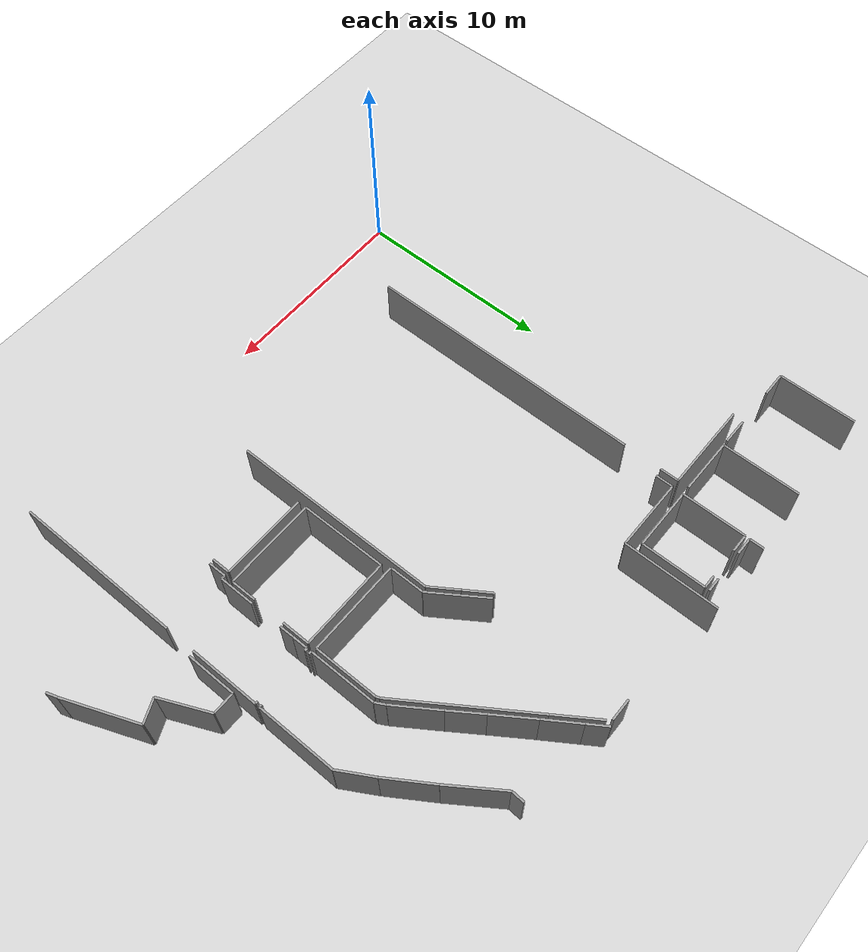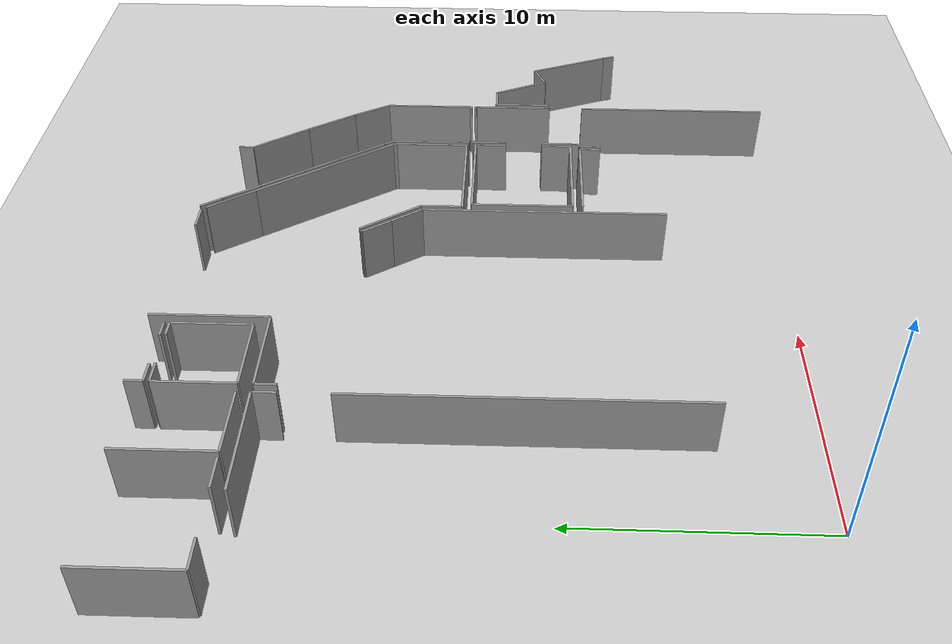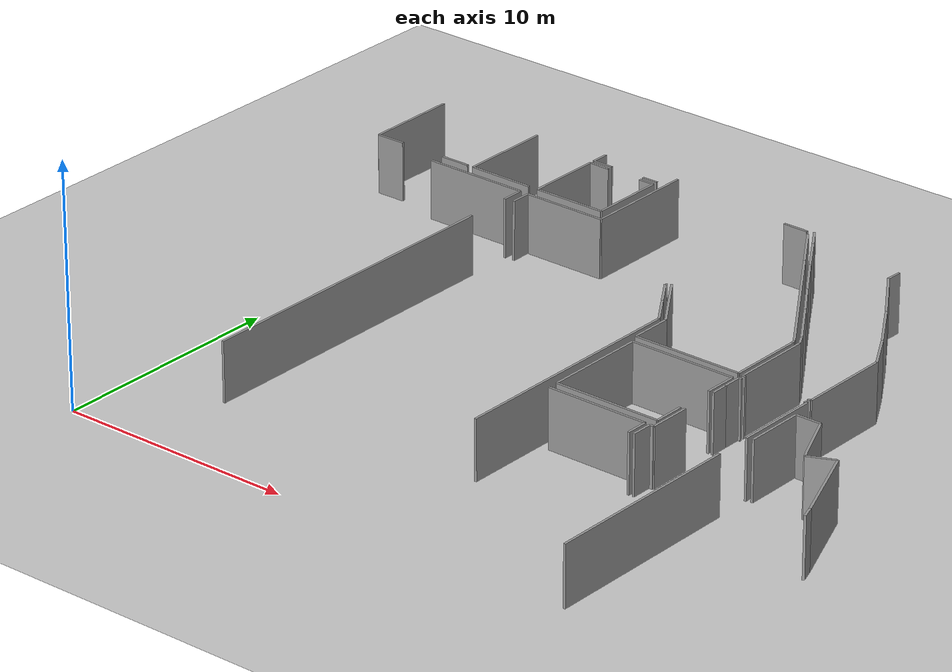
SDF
<sdf version="1.6">
 <world name="default">
  <model name="ground_plane">
   <static>1</static>
   <link name="link">
    <collision name="collision">
     <geometry><plane><normal>0 0 1</normal><size>100 100</size></plane></geometry>
     <surface><friction><ode><mu>100</mu><mu2>50</mu2></ode></friction></surface>
    </collision>
    <visual name="visual">
     <cast_shadows>0</cast_shadows>
     <geometry><plane><normal>0 0 1</normal><size>100 100</size></plane></geometry>
     <material>
      <script><uri>file://media/materials/scripts/gazebo.material</uri><name>Gazebo/Grey</name></script>
     </material>
    </visual>
   </link>
  </model>
  <model name="50041193">
   <static>1</static>
   <link name="Wall_91">
    <collision name="Wall_91_Collision">
     <geometry><box><size>4.47011577516 0.1 2.5</size></box></geometry>
     <pose>2.23505788758 0 1.25 0 0 0</pose>
    </collision>
    <visual name="Wall_91_Visual">
     <pose>2.23505788758 0 1.25 0 0 0</pose>
     <geometry><box><size>4.47011577516 0.1 2.5</size></box></geometry>
     <material>
      <script><uri>file://media/materials/scripts/gazebo.material</uri><name>Gazebo/Grey</name></script>
      <ambient>1 1 1 1</ambient>
     </material>
    </visual>
    <pose>30.9786877121 -32.1352319951 0 0 0 0.0</pose>
   </link>
   <link name="Wall_92">
    <collision name="Wall_92_Collision">
     <geometry><box><size>0.927345050644 0.1 2.5</size></box></geometry>
     <pose>0.463672525322 0 1.25 0 0 0</pose>
    </collision>
    <visual name="Wall_92_Visual">
     <pose>0.463672525322 0 1.25 0 0 0</pose>
     <geometry><box><size>0.927345050644 0.1 2.5</size></box></geometry>
     <material>
      <script><uri>file://media/materials/scripts/gazebo.material</uri><name>Gazebo/Grey</name></script>
      <ambient>1 1 1 1</ambient>
     </material>
    </visual>
    <pose>35.4488034872 -32.1352319951 0 0 0 -1.57079632679</pose>
   </link>
   <link name="Wall_93">
    <collision name="Wall_93_Collision">
     <geometry><box><size>14.011336053 0.1 2.5</size></box></geometry>
     <pose>7.00566802648 0 1.25 0 0 0</pose>
    </collision>
    <visual name="Wall_93_Visual">
     <pose>7.00566802648 0 1.25 0 0 0</pose>
     <geometry><box><size>14.011336053 0.1 2.5</size></box></geometry>
     <material>
      <script><uri>file://media/materials/scripts/gazebo.material</uri><name>Gazebo/Grey</name></script>
      <ambient>1 1 1 1</ambient>
     </material>
    </visual>
    <pose>35.4488034872 -35.0128356654 0 0 0 -1.57079632679</pose>
   </link>
   <link name="Wall_160">
    <collision name="Wall_160_Collision">
     <geometry><box><size>0.865581353972 0.1 2.5</size></box></geometry>
     <pose>0.432790676986 0 1.25 0 0 0</pose>
    </collision>
    <visual name="Wall_160_Visual">
     <pose>0.432790676986 0 1.25 0 0 0</pose>
     <geometry><box><size>0.865581353972 0.1 2.5</size></box></geometry>
     <material>
      <script><uri>file://media/materials/scripts/gazebo.material</uri><name>Gazebo/Grey</name></script>
      <ambient>1 1 1 1</ambient>
     </material>
    </visual>
    <pose>35.8492508292 -33.0225450201 0 0 0 1.57079632679</pose>
   </link>
   <link name="Wall_161">
    <collision name="Wall_161_Collision">
     <geometry><box><size>3.57759223252 0.1 2.5</size></box></geometry>
     <pose>1.78879611626 0 1.25 0 0 0</pose>
    </collision>
    <visual name="Wall_161_Visual">
     <pose>1.78879611626 0 1.25 0 0 0</pose>
     <geometry><box><size>3.57759223252 0.1 2.5</size></box></geometry>
     <material>
      <script><uri>file://media/materials/scripts/gazebo.material</uri><name>Gazebo/Grey</name></script>
      <ambient>1 1 1 1</ambient>
     </material>
    </visual>
    <pose>35.8492508292 -32.1569636662 0 0 0 0.0</pose>
   </link>
   <link name="Wall_162">
    <collision name="Wall_162_Collision">
     <geometry><box><size>4.72797285447 0.1 2.5</size></box></geometry>
     <pose>2.36398642724 0 1.25 0 0 0</pose>
    </collision>
    <visual name="Wall_162_Visual">
     <pose>2.36398642724 0 1.25 0 0 0</pose>
     <geometry><box><size>4.72797285447 0.1 2.5</size></box></geometry>
     <material>
      <script><uri>file://media/materials/scripts/gazebo.material</uri><name>Gazebo/Grey</name></script>
      <ambient>1 1 1 1</ambient>
     </material>
    </visual>
    <pose>39.4268430618 -32.1569636662 0 0 0 1.57079632679</pose>
   </link>
   <link name="Wall_165">
    <collision name="Wall_165_Collision">
     <geometry><box><size>0.691855071359 0.1 2.5</size></box></geometry>
     <pose>0.345927535679 0 1.25 0 0 0</pose>
    </collision>
    <visual name="Wall_165_Visual">
     <pose>0.345927535679 0 1.25 0 0 0</pose>
     <geometry><box><size>0.691855071359 0.1 2.5</size></box></geometry>
     <material>
      <script><uri>file://media/materials/scripts/gazebo.material</uri><name>Gazebo/Grey</name></script>
      <ambient>1 1 1 1</ambient>
     </material>
    </visual>
    <pose>38.9859824367 -28.1592257933 0 0 0 3.14159265359</pose>
   </link>
   <link name="Wall_166">
    <collision name="Wall_166_Collision">
     <geometry><box><size>0.888710968775 0.1 2.5</size></box></geometry>
     <pose>0.444355484388 0 1.25 0 0 0</pose>
    </collision>
    <visual name="Wall_166_Visual">
     <pose>0.444355484388 0 1.25 0 0 0</pose>
     <geometry><box><size>0.888710968775 0.1 2.5</size></box></geometry>
     <material>
      <script><uri>file://media/materials/scripts/gazebo.material</uri><name>Gazebo/Grey</name></script>
      <ambient>1 1 1 1</ambient>
     </material>
    </visual>
    <pose>36.7632518713 -28.1592257933 0 0 0 3.14159265359</pose>
   </link>
   <link name="Wall_167">
    <collision name="Wall_167_Collision">
     <geometry><box><size>0.726803665154 0.1 2.5</size></box></geometry>
     <pose>0.363401832577 0 1.25 0 0 0</pose>
    </collision>
    <visual name="Wall_167_Visual">
     <pose>0.363401832577 0 1.25 0 0 0</pose>
     <geometry><box><size>0.726803665154 0.1 2.5</size></box></geometry>
     <material>
      <script><uri>file://media/materials/scripts/gazebo.material</uri><name>Gazebo/Grey</name></script>
      <ambient>1 1 1 1</ambient>
     </material>
    </visual>
    <pose>35.8745409026 -28.1592257933 0 0 0 1.57079632679</pose>
   </link>
   <link name="Wall_178">
    <collision name="Wall_178_Collision">
     <geometry><box><size>0.642270563866 0.1 2.5</size></box></geometry>
     <pose>0.321135281933 0 1.25 0 0 0</pose>
    </collision>
    <visual name="Wall_178_Visual">
     <pose>0.321135281933 0 1.25 0 0 0</pose>
     <geometry><box><size>0.642270563866 0.1 2.5</size></box></geometry>
     <material>
      <script><uri>file://media/materials/scripts/gazebo.material</uri><name>Gazebo/Grey</name></script>
      <ambient>1 1 1 1</ambient>
     </material>
    </visual>
    <pose>50.8868046818 -28.7494122282 0 0 0 -1.61453944895</pose>
   </link>
   <link name="Wall_179">
    <collision name="Wall_179_Collision">
     <geometry><box><size>2.78820247608 0.1 2.5</size></box></geometry>
     <pose>1.39410123804 0 1.25 0 0 0</pose>
    </collision>
    <visual name="Wall_179_Visual">
     <pose>1.39410123804 0 1.25 0 0 0</pose>
     <geometry><box><size>2.78820247608 0.1 2.5</size></box></geometry>
     <material>
      <script><uri>file://media/materials/scripts/gazebo.material</uri><name>Gazebo/Grey</name></script>
      <ambient>1 1 1 1</ambient>
     </material>
    </visual>
    <pose>50.858718721 -29.3910684103 0 0 0 -0.972617083423</pose>
   </link>
   <link name="Wall_180">
    <collision name="Wall_180_Collision">
     <geometry><box><size>2.3991528332 0.1 2.5</size></box></geometry>
     <pose>1.1995764166 0 1.25 0 0 0</pose>
    </collision>
    <visual name="Wall_180_Visual">
     <pose>1.1995764166 0 1.25 0 0 0</pose>
     <geometry><box><size>2.3991528332 0.1 2.5</size></box></geometry>
     <material>
      <script><uri>file://media/materials/scripts/gazebo.material</uri><name>Gazebo/Grey</name></script>
      <ambient>1 1 1 1</ambient>
     </material>
    </visual>
    <pose>52.4288637259 -31.6951338849 0 0 0 -1.00024816302</pose>
   </link>
   <link name="Wall_181">
    <collision name="Wall_181_Collision">
     <geometry><box><size>1.79544605039 0.1 2.5</size></box></geometry>
     <pose>0.897723025195 0 1.25 0 0 0</pose>
    </collision>
    <visual name="Wall_181_Visual">
     <pose>0.897723025195 0 1.25 0 0 0</pose>
     <geometry><box><size>1.79544605039 0.1 2.5</size></box></geometry>
     <material>
      <script><uri>file://media/materials/scripts/gazebo.material</uri><name>Gazebo/Grey</name></script>
      <ambient>1 1 1 1</ambient>
     </material>
    </visual>
    <pose>53.724630498 -33.7142730057 0 0 0 -1.04988553948</pose>
   </link>
   <link name="Wall_182">
    <collision name="Wall_182_Collision">
     <geometry><box><size>3.93775337731 0.1 2.5</size></box></geometry>
     <pose>1.96887668865 0 1.25 0 0 0</pose>
    </collision>
    <visual name="Wall_182_Visual">
     <pose>1.96887668865 0 1.25 0 0 0</pose>
     <geometry><box><size>3.93775337731 0.1 2.5</size></box></geometry>
     <material>
      <script><uri>file://media/materials/scripts/gazebo.material</uri><name>Gazebo/Grey</name></script>
      <ambient>1 1 1 1</ambient>
     </material>
    </visual>
    <pose>54.6181707271 -35.2715823452 0 0 0 -1.57079632679</pose>
   </link>
   <link name="Wall_183">
    <collision name="Wall_183_Collision">
     <geometry><box><size>0.138904774613 0.1 2.5</size></box></geometry>
     <pose>0.0694523873067 0 1.25 0 0 0</pose>
    </collision>
    <visual name="Wall_183_Visual">
     <pose>0.0694523873067 0 1.25 0 0 0</pose>
     <geometry><box><size>0.138904774613 0.1 2.5</size></box></geometry>
     <material>
      <script><uri>file://media/materials/scripts/gazebo.material</uri><name>Gazebo/Grey</name></script>
      <ambient>1 1 1 1</ambient>
     </material>
    </visual>
    <pose>54.6181707271 -39.2093357225 0 0 0 3.14159265359</pose>
   </link>
   <link name="Wall_184">
    <collision name="Wall_184_Collision">
     <geometry><box><size>0.138523517226 0.1 2.5</size></box></geometry>
     <pose>0.0692617586132 0 1.25 0 0 0</pose>
    </collision>
    <visual name="Wall_184_Visual">
     <pose>0.0692617586132 0 1.25 0 0 0</pose>
     <geometry><box><size>0.138523517226 0.1 2.5</size></box></geometry>
     <material>
      <script><uri>file://media/materials/scripts/gazebo.material</uri><name>Gazebo/Grey</name></script>
      <ambient>1 1 1 1</ambient>
     </material>
    </visual>
    <pose>51.711845667 -39.2093357225 0 0 0 3.14159265359</pose>
   </link>
   <link name="Wall_185">
    <collision name="Wall_185_Collision">
     <geometry><box><size>3.38569268113 0.1 2.5</size></box></geometry>
     <pose>1.69284634056 0 1.25 0 0 0</pose>
    </collision>
    <visual name="Wall_185_Visual">
     <pose>1.69284634056 0 1.25 0 0 0</pose>
     <geometry><box><size>3.38569268113 0.1 2.5</size></box></geometry>
     <material>
      <script><uri>file://media/materials/scripts/gazebo.material</uri><name>Gazebo/Grey</name></script>
      <ambient>1 1 1 1</ambient>
     </material>
    </visual>
    <pose>51.5733221498 -39.2093357225 0 0 0 1.57079632679</pose>
   </link>
   <link name="Wall_186">
    <collision name="Wall_186_Collision">
     <geometry><box><size>0.516600804796 0.1 2.5</size></box></geometry>
     <pose>0.258300402398 0 1.25 0 0 0</pose>
    </collision>
    <visual name="Wall_186_Visual">
     <pose>0.258300402398 0 1.25 0 0 0</pose>
     <geometry><box><size>0.516600804796 0.1 2.5</size></box></geometry>
     <material>
      <script><uri>file://media/materials/scripts/gazebo.material</uri><name>Gazebo/Grey</name></script>
      <ambient>1 1 1 1</ambient>
     </material>
    </visual>
    <pose>51.5733221498 -35.8236430414 0 0 0 2.06943625156</pose>
   </link>
   <link name="Wall_187">
    <collision name="Wall_187_Collision">
     <geometry><box><size>2.33858599073 0.1 2.5</size></box></geometry>
     <pose>1.16929299537 0 1.25 0 0 0</pose>
    </collision>
    <visual name="Wall_187_Visual">
     <pose>1.16929299537 0 1.25 0 0 0</pose>
     <geometry><box><size>2.33858599073 0.1 2.5</size></box></geometry>
     <material>
      <script><uri>file://media/materials/scripts/gazebo.material</uri><name>Gazebo/Grey</name></script>
      <ambient>1 1 1 1</ambient>
     </material>
    </visual>
    <pose>51.3262673631 -35.3699467511 0 0 0 2.15968818073</pose>
   </link>
   <link name="Wall_188">
    <collision name="Wall_188_Collision">
     <geometry><box><size>1.70840346458 0.1 2.5</size></box></geometry>
     <pose>0.854201732291 0 1.25 0 0 0</pose>
    </collision>
    <visual name="Wall_188_Visual">
     <pose>0.854201732291 0 1.25 0 0 0</pose>
     <geometry><box><size>1.70840346458 0.1 2.5</size></box></geometry>
     <material>
      <script><uri>file://media/materials/scripts/gazebo.material</uri><name>Gazebo/Grey</name></script>
      <ambient>1 1 1 1</ambient>
     </material>
    </visual>
    <pose>50.0273234461 -33.4252799065 0 0 0 2.16814522389</pose>
   </link>
   <link name="Wall_189">
    <collision name="Wall_189_Collision">
     <geometry><box><size>2.08422069436 0.1 2.5</size></box></geometry>
     <pose>1.04211034718 0 1.25 0 0 0</pose>
    </collision>
    <visual name="Wall_189_Visual">
     <pose>1.04211034718 0 1.25 0 0 0</pose>
     <geometry><box><size>2.08422069436 0.1 2.5</size></box></geometry>
     <material>
      <script><uri>file://media/materials/scripts/gazebo.material</uri><name>Gazebo/Grey</name></script>
      <ambient>1 1 1 1</ambient>
     </material>
    </visual>
    <pose>49.0664277454 -32.0127212881 0 0 0 2.16260402266</pose>
   </link>
   <link name="Wall_190">
    <collision name="Wall_190_Collision">
     <geometry><box><size>1.80439079095 0.1 2.5</size></box></geometry>
     <pose>0.902195395474 0 1.25 0 0 0</pose>
    </collision>
    <visual name="Wall_190_Visual">
     <pose>0.902195395474 0 1.25 0 0 0</pose>
     <geometry><box><size>1.80439079095 0.1 2.5</size></box></geometry>
     <material>
      <script><uri>file://media/materials/scripts/gazebo.material</uri><name>Gazebo/Grey</name></script>
      <ambient>1 1 1 1</ambient>
     </material>
    </visual>
    <pose>47.9037198012 -30.2829565239 0 0 0 2.15147355494</pose>
   </link>
   <link name="Wall_191">
    <collision name="Wall_191_Collision">
     <geometry><box><size>1.01273857203 0.1 2.5</size></box></geometry>
     <pose>0.506369286016 0 1.25 0 0 0</pose>
    </collision>
    <visual name="Wall_191_Visual">
     <pose>0.506369286016 0 1.25 0 0 0</pose>
     <geometry><box><size>1.01273857203 0.1 2.5</size></box></geometry>
     <material>
      <script><uri>file://media/materials/scripts/gazebo.material</uri><name>Gazebo/Grey</name></script>
      <ambient>1 1 1 1</ambient>
     </material>
    </visual>
    <pose>46.9138485391 -28.7743210441 0 0 0 2.15347390759</pose>
   </link>
   <link name="Wall_197">
    <collision name="Wall_197_Collision">
     <geometry><box><size>0.0807289947508 0.1 2.5</size></box></geometry>
     <pose>0.0403644973754 0 1.25 0 0 0</pose>
    </collision>
    <visual name="Wall_197_Visual">
     <pose>0.0403644973754 0 1.25 0 0 0</pose>
     <geometry><box><size>0.0807289947508 0.1 2.5</size></box></geometry>
     <material>
      <script><uri>file://media/materials/scripts/gazebo.material</uri><name>Gazebo/Grey</name></script>
      <ambient>1 1 1 1</ambient>
     </material>
    </visual>
    <pose>44.8732319189 -35.0114377216 0 0 0 -2.50816677062</pose>
   </link>
   <link name="Wall_198">
    <collision name="Wall_198_Collision">
     <geometry><box><size>1.38310541928 0.1 2.5</size></box></geometry>
     <pose>0.69155270964 0 1.25 0 0 0</pose>
    </collision>
    <visual name="Wall_198_Visual">
     <pose>0.69155270964 0 1.25 0 0 0</pose>
     <geometry><box><size>1.38310541928 0.1 2.5</size></box></geometry>
     <material>
      <script><uri>file://media/materials/scripts/gazebo.material</uri><name>Gazebo/Grey</name></script>
      <ambient>1 1 1 1</ambient>
     </material>
    </visual>
    <pose>44.8081639915 -35.0592219808 0 0 0 -0.984883424589</pose>
   </link>
   <link name="Wall_199">
    <collision name="Wall_199_Collision">
     <geometry><box><size>1.5091121074 0.1 2.5</size></box></geometry>
     <pose>0.754556053699 0 1.25 0 0 0</pose>
    </collision>
    <visual name="Wall_199_Visual">
     <pose>0.754556053699 0 1.25 0 0 0</pose>
     <geometry><box><size>1.5091121074 0.1 2.5</size></box></geometry>
     <material>
      <script><uri>file://media/materials/scripts/gazebo.material</uri><name>Gazebo/Grey</name></script>
      <ambient>1 1 1 1</ambient>
     </material>
    </visual>
    <pose>45.5729663096 -36.2116359754 0 0 0 -0.983798043825</pose>
   </link>
   <link name="Wall_200">
    <collision name="Wall_200_Collision">
     <geometry><box><size>10.4121392352 0.1 2.5</size></box></geometry>
     <pose>5.2060696176 0 1.25 0 0 0</pose>
    </collision>
    <visual name="Wall_200_Visual">
     <pose>5.2060696176 0 1.25 0 0 0</pose>
     <geometry><box><size>10.4121392352 0.1 2.5</size></box></geometry>
     <material>
      <script><uri>file://media/materials/scripts/gazebo.material</uri><name>Gazebo/Grey</name></script>
      <ambient>1 1 1 1</ambient>
     </material>
    </visual>
    <pose>46.4088095874 -37.4681332367 0 0 0 -1.57079632679</pose>
   </link>
   <link name="Wall_239">
    <collision name="Wall_239_Collision">
     <geometry><box><size>3.9232655966 0.1 2.5</size></box></geometry>
     <pose>1.9616327983 0 1.25 0 0 0</pose>
    </collision>
    <visual name="Wall_239_Visual">
     <pose>1.9616327983 0 1.25 0 0 0</pose>
     <geometry><box><size>3.9232655966 0.1 2.5</size></box></geometry>
     <material>
      <script><uri>file://media/materials/scripts/gazebo.material</uri><name>Gazebo/Grey</name></script>
      <ambient>1 1 1 1</ambient>
     </material>
    </visual>
    <pose>27.8256891227 -31.5976590796 0 0 0 1.57079632679</pose>
   </link>
   <link name="Wall_247">
    <collision name="Wall_247_Collision">
     <geometry><box><size>1.29868974545 0.1 2.5</size></box></geometry>
     <pose>0.649344872724 0 1.25 0 0 0</pose>
    </collision>
    <visual name="Wall_247_Visual">
     <pose>0.649344872724 0 1.25 0 0 0</pose>
     <geometry><box><size>1.29868974545 0.1 2.5</size></box></geometry>
     <material>
      <script><uri>file://media/materials/scripts/gazebo.material</uri><name>Gazebo/Grey</name></script>
      <ambient>1 1 1 1</ambient>
     </material>
    </visual>
    <pose>32.3720563753 -31.586856787 0 0 0 3.14159265359</pose>
   </link>
   <link name="Wall_248">
    <collision name="Wall_248_Collision">
     <geometry><box><size>1.24332726575 0.1 2.5</size></box></geometry>
     <pose>0.621663632877 0 1.25 0 0 0</pose>
    </collision>
    <visual name="Wall_248_Visual">
     <pose>0.621663632877 0 1.25 0 0 0</pose>
     <geometry><box><size>1.24332726575 0.1 2.5</size></box></geometry>
     <material>
      <script><uri>file://media/materials/scripts/gazebo.material</uri><name>Gazebo/Grey</name></script>
      <ambient>1 1 1 1</ambient>
     </material>
    </visual>
    <pose>29.0689694613 -31.586856787 0 0 0 -3.13290433087</pose>
   </link>
   <link name="Wall_249">
    <collision name="Wall_249_Collision">
     <geometry><box><size>3.9117007892 0.1 2.5</size></box></geometry>
     <pose>1.9558503946 0 1.25 0 0 0</pose>
    </collision>
    <visual name="Wall_249_Visual">
     <pose>1.9558503946 0 1.25 0 0 0</pose>
     <geometry><box><size>3.9117007892 0.1 2.5</size></box></geometry>
     <material>
      <script><uri>file://media/materials/scripts/gazebo.material</uri><name>Gazebo/Grey</name></script>
      <ambient>1 1 1 1</ambient>
     </material>
    </visual>
    <pose>32.6342343716 -31.5860942722 0 0 0 1.57079632679</pose>
   </link>
   <link name="Wall_253">
    <collision name="Wall_253_Collision">
     <geometry><box><size>2.80607819867 0.1 2.5</size></box></geometry>
     <pose>1.40303909933 0 1.25 0 0 0</pose>
    </collision>
    <visual name="Wall_253_Visual">
     <pose>1.40303909933 0 1.25 0 0 0</pose>
     <geometry><box><size>2.80607819867 0.1 2.5</size></box></geometry>
     <material>
      <script><uri>file://media/materials/scripts/gazebo.material</uri><name>Gazebo/Grey</name></script>
      <ambient>1 1 1 1</ambient>
     </material>
    </visual>
    <pose>35.4402887389 -31.5976590796 0 0 0 3.13747130011</pose>
   </link>
   <link name="Wall_254">
    <collision name="Wall_254_Collision">
     <geometry><box><size>3.20726422408 0.1 2.5</size></box></geometry>
     <pose>1.60363211204 0 1.25 0 0 0</pose>
    </collision>
    <visual name="Wall_254_Visual">
     <pose>1.60363211204 0 1.25 0 0 0</pose>
     <geometry><box><size>3.20726422408 0.1 2.5</size></box></geometry>
     <material>
      <script><uri>file://media/materials/scripts/gazebo.material</uri><name>Gazebo/Grey</name></script>
      <ambient>1 1 1 1</ambient>
     </material>
    </visual>
    <pose>35.8608156366 -31.5872380444 0 0 0 1.57079632679</pose>
   </link>
   <link name="Wall_255">
    <collision name="Wall_255_Collision">
     <geometry><box><size>0.923532476775 0.1 2.5</size></box></geometry>
     <pose>0.461766238388 0 1.25 0 0 0</pose>
    </collision>
    <visual name="Wall_255_Visual">
     <pose>0.461766238388 0 1.25 0 0 0</pose>
     <geometry><box><size>0.923532476775 0.1 2.5</size></box></geometry>
     <material>
      <script><uri>file://media/materials/scripts/gazebo.material</uri><name>Gazebo/Grey</name></script>
      <ambient>1 1 1 1</ambient>
     </material>
    </visual>
    <pose>35.8608156366 -28.3799738203 0 0 0 0.0</pose>
   </link>
   <link name="Wall_256">
    <collision name="Wall_256_Collision">
     <geometry><box><size>0.656398134381 0.1 2.5</size></box></geometry>
     <pose>0.32819906719 0 1.25 0 0 0</pose>
    </collision>
    <visual name="Wall_256_Visual">
     <pose>0.32819906719 0 1.25 0 0 0</pose>
     <geometry><box><size>0.656398134381 0.1 2.5</size></box></geometry>
     <material>
      <script><uri>file://media/materials/scripts/gazebo.material</uri><name>Gazebo/Grey</name></script>
      <ambient>1 1 1 1</ambient>
     </material>
    </visual>
    <pose>38.3192903529 -28.3799738203 0 0 0 0.0</pose>
   </link>
   <link name="Wall_257">
    <collision name="Wall_257_Collision">
     <geometry><box><size>3.20446833657 0.1 2.5</size></box></geometry>
     <pose>1.60223416829 0 1.25 0 0 0</pose>
    </collision>
    <visual name="Wall_257_Visual">
     <pose>1.60223416829 0 1.25 0 0 0</pose>
     <geometry><box><size>3.20446833657 0.1 2.5</size></box></geometry>
     <material>
      <script><uri>file://media/materials/scripts/gazebo.material</uri><name>Gazebo/Grey</name></script>
      <ambient>1 1 1 1</ambient>
     </material>
    </visual>
    <pose>38.9756884873 -28.3799738203 0 0 0 -1.57079632679</pose>
   </link>
   <link name="Wall_258">
    <collision name="Wall_258_Collision">
     <geometry><box><size>3.11487410545 0.1 2.5</size></box></geometry>
     <pose>1.55743705272 0 1.25 0 0 0</pose>
    </collision>
    <visual name="Wall_258_Visual">
     <pose>1.55743705272 0 1.25 0 0 0</pose>
     <geometry><box><size>3.11487410545 0.1 2.5</size></box></geometry>
     <material>
      <script><uri>file://media/materials/scripts/gazebo.material</uri><name>Gazebo/Grey</name></script>
      <ambient>1 1 1 1</ambient>
     </material>
    </visual>
    <pose>38.9756884873 -31.5844421569 0 0 0 -3.14069506101</pose>
   </link>
   <link name="Wall_259">
    <collision name="Wall_259_Collision">
     <geometry><box><size>1.74768386137 0.1 2.5</size></box></geometry>
     <pose>0.873841930687 0 1.25 0 0 0</pose>
    </collision>
    <visual name="Wall_259_Visual">
     <pose>0.873841930687 0 1.25 0 0 0</pose>
     <geometry><box><size>1.74768386137 0.1 2.5</size></box></geometry>
     <material>
      <script><uri>file://media/materials/scripts/gazebo.material</uri><name>Gazebo/Grey</name></script>
      <ambient>1 1 1 1</ambient>
     </material>
    </visual>
    <pose>46.6666666667 -39.1488428838 0 0 0 1.57079632679</pose>
   </link>
   <link name="Wall_260">
    <collision name="Wall_260_Collision">
     <geometry><box><size>2.96959729612 0.1 2.5</size></box></geometry>
     <pose>1.48479864806 0 1.25 0 0 0</pose>
    </collision>
    <visual name="Wall_260_Visual">
     <pose>1.48479864806 0 1.25 0 0 0</pose>
     <geometry><box><size>2.96959729612 0.1 2.5</size></box></geometry>
     <material>
      <script><uri>file://media/materials/scripts/gazebo.material</uri><name>Gazebo/Grey</name></script>
      <ambient>1 1 1 1</ambient>
     </material>
    </visual>
    <pose>46.6666666667 -37.4011590225 0 0 0 2.16206301371</pose>
   </link>
   <link name="Wall_261">
    <collision name="Wall_261_Collision">
     <geometry><box><size>1.07679794629 0.1 2.5</size></box></geometry>
     <pose>0.538398973147 0 1.25 0 0 0</pose>
    </collision>
    <visual name="Wall_261_Visual">
     <pose>0.538398973147 0 1.25 0 0 0</pose>
     <geometry><box><size>1.07679794629 0.1 2.5</size></box></geometry>
     <material>
      <script><uri>file://media/materials/scripts/gazebo.material</uri><name>Gazebo/Grey</name></script>
      <ambient>1 1 1 1</ambient>
     </material>
    </visual>
    <pose>45.0113741787 -28.0273107375 0 0 0 0.0</pose>
   </link>
   <link name="Wall_263">
    <collision name="Wall_263_Collision">
     <geometry><box><size>2.29170621338 0.1 2.5</size></box></geometry>
     <pose>1.14585310669 0 1.25 0 0 0</pose>
    </collision>
    <visual name="Wall_263_Visual">
     <pose>1.14585310669 0 1.25 0 0 0</pose>
     <geometry><box><size>2.29170621338 0.1 2.5</size></box></geometry>
     <material>
      <script><uri>file://media/materials/scripts/gazebo.material</uri><name>Gazebo/Grey</name></script>
      <ambient>1 1 1 1</ambient>
     </material>
    </visual>
    <pose>46.2502065144 -28.2101871974 0 0 0 -0.982778342891</pose>
   </link>
   <link name="Wall_264">
    <collision name="Wall_264_Collision">
     <geometry><box><size>6.78213673655 0.1 2.5</size></box></geometry>
     <pose>3.39106836828 0 1.25 0 0 0</pose>
    </collision>
    <visual name="Wall_264_Visual">
     <pose>3.39106836828 0 1.25 0 0 0</pose>
     <geometry><box><size>6.78213673655 0.1 2.5</size></box></geometry>
     <material>
      <script><uri>file://media/materials/scripts/gazebo.material</uri><name>Gazebo/Grey</name></script>
      <ambient>1 1 1 1</ambient>
     </material>
    </visual>
    <pose>47.521445728 -30.1169824749 0 0 0 -0.982466307659</pose>
   </link>
   <link name="Wall_265">
    <collision name="Wall_265_Collision">
     <geometry><box><size>0.183940742385 0.1 2.5</size></box></geometry>
     <pose>0.0919703711925 0 1.25 0 0 0</pose>
    </collision>
    <visual name="Wall_265_Visual">
     <pose>0.0919703711925 0 1.25 0 0 0</pose>
     <geometry><box><size>0.183940742385 0.1 2.5</size></box></geometry>
     <material>
      <script><uri>file://media/materials/scripts/gazebo.material</uri><name>Gazebo/Grey</name></script>
      <ambient>1 1 1 1</ambient>
     </material>
    </visual>
    <pose>51.2853457369 -35.7588292857 0 0 0 -1.24882728868</pose>
   </link>
   <link name="Wall_266">
    <collision name="Wall_266_Collision">
     <geometry><box><size>3.20561210873 0.1 2.5</size></box></geometry>
     <pose>1.60280605437 0 1.25 0 0 0</pose>
    </collision>
    <visual name="Wall_266_Visual">
     <pose>1.60280605437 0 1.25 0 0 0</pose>
     <geometry><box><size>3.20561210873 0.1 2.5</size></box></geometry>
     <material>
      <script><uri>file://media/materials/scripts/gazebo.material</uri><name>Gazebo/Grey</name></script>
      <ambient>1 1 1 1</ambient>
     </material>
    </visual>
    <pose>51.3435510313 -35.933318083 0 0 0 -1.57079632679</pose>
   </link>
   <link name="Wall_267">
    <collision name="Wall_267_Collision">
     <geometry><box><size>4.67689486964 0.1 2.5</size></box></geometry>
     <pose>2.33844743482 0 1.25 0 0 0</pose>
    </collision>
    <visual name="Wall_267_Visual">
     <pose>2.33844743482 0 1.25 0 0 0</pose>
     <geometry><box><size>4.67689486964 0.1 2.5</size></box></geometry>
     <material>
      <script><uri>file://media/materials/scripts/gazebo.material</uri><name>Gazebo/Grey</name></script>
      <ambient>1 1 1 1</ambient>
     </material>
    </visual>
    <pose>51.3435510313 -39.1389301918 0 0 0 -3.13947314914</pose>
   </link>
   <link name="Wall_281">
    <collision name="Wall_281_Collision">
     <geometry><box><size>4.33781946192 0.1 2.5</size></box></geometry>
     <pose>2.16890973096 0 1.25 0 0 0</pose>
    </collision>
    <visual name="Wall_281_Visual">
     <pose>2.16890973096 0 1.25 0 0 0</pose>
     <geometry><box><size>4.33781946192 0.1 2.5</size></box></geometry>
     <material>
      <script><uri>file://media/materials/scripts/gazebo.material</uri><name>Gazebo/Grey</name></script>
      <ambient>1 1 1 1</ambient>
     </material>
    </visual>
    <pose>46.8415367214 -44.31475339 0 0 0 0.0</pose>
   </link>
   <link name="Wall_282">
    <collision name="Wall_282_Collision">
     <geometry><box><size>0.923659562571 0.1 2.5</size></box></geometry>
     <pose>0.461829781285 0 1.25 0 0 0</pose>
    </collision>
    <visual name="Wall_282_Visual">
     <pose>0.461829781285 0 1.25 0 0 0</pose>
     <geometry><box><size>0.923659562571 0.1 2.5</size></box></geometry>
     <material>
      <script><uri>file://media/materials/scripts/gazebo.material</uri><name>Gazebo/Grey</name></script>
      <ambient>1 1 1 1</ambient>
     </material>
    </visual>
    <pose>51.1793561834 -44.31475339 0 0 0 -1.57079632679</pose>
   </link>
   <link name="Wall_285">
    <collision name="Wall_285_Collision">
     <geometry><box><size>4.3355319176 0.1 2.5</size></box></geometry>
     <pose>2.1677659588 0 1.25 0 0 0</pose>
    </collision>
    <visual name="Wall_285_Visual">
     <pose>2.1677659588 0 1.25 0 0 0</pose>
     <geometry><box><size>4.3355319176 0.1 2.5</size></box></geometry>
     <material>
      <script><uri>file://media/materials/scripts/gazebo.material</uri><name>Gazebo/Grey</name></script>
      <ambient>1 1 1 1</ambient>
     </material>
    </visual>
    <pose>46.8422992362 -43.8876180309 0 0 0 1.57079632679</pose>
   </link>
   <link name="Wall_286">
    <collision name="Wall_286_Collision">
     <geometry><box><size>4.55043399799 0.1 2.5</size></box></geometry>
     <pose>2.275216999 0 1.25 0 0 0</pose>
    </collision>
    <visual name="Wall_286_Visual">
     <pose>2.275216999 0 1.25 0 0 0</pose>
     <geometry><box><size>4.55043399799 0.1 2.5</size></box></geometry>
     <material>
      <script><uri>file://media/materials/scripts/gazebo.material</uri><name>Gazebo/Grey</name></script>
      <ambient>1 1 1 1</ambient>
     </material>
    </visual>
    <pose>46.8422992362 -39.5520861133 0 0 0 0.0</pose>
   </link>
   <link name="Wall_287">
    <collision name="Wall_287_Collision">
     <geometry><box><size>1.39451243535 0.1 2.5</size></box></geometry>
     <pose>0.697256217673 0 1.25 0 0 0</pose>
    </collision>
    <visual name="Wall_287_Visual">
     <pose>0.697256217673 0 1.25 0 0 0</pose>
     <geometry><box><size>1.39451243535 0.1 2.5</size></box></geometry>
     <material>
      <script><uri>file://media/materials/scripts/gazebo.material</uri><name>Gazebo/Grey</name></script>
      <ambient>1 1 1 1</ambient>
     </material>
    </visual>
    <pose>51.3927332342 -39.5520861133 0 0 0 -1.57079632679</pose>
   </link>
   <link name="Wall_288">
    <collision name="Wall_288_Collision">
     <geometry><box><size>1.29538551476 0.1 2.5</size></box></geometry>
     <pose>0.647692757381 0 1.25 0 0 0</pose>
    </collision>
    <visual name="Wall_288_Visual">
     <pose>0.647692757381 0 1.25 0 0 0</pose>
     <geometry><box><size>1.29538551476 0.1 2.5</size></box></geometry>
     <material>
      <script><uri>file://media/materials/scripts/gazebo.material</uri><name>Gazebo/Grey</name></script>
      <ambient>1 1 1 1</ambient>
     </material>
    </visual>
    <pose>51.3927332342 -42.5886741139 0 0 0 -1.57079632679</pose>
   </link>
   <link name="Wall_289">
    <collision name="Wall_289_Collision">
     <geometry><box><size>4.55043538931 0.1 2.5</size></box></geometry>
     <pose>2.27521769466 0 1.25 0 0 0</pose>
    </collision>
    <visual name="Wall_289_Visual">
     <pose>2.27521769466 0 1.25 0 0 0</pose>
     <geometry><box><size>4.55043538931 0.1 2.5</size></box></geometry>
     <material>
      <script><uri>file://media/materials/scripts/gazebo.material</uri><name>Gazebo/Grey</name></script>
      <ambient>1 1 1 1</ambient>
     </material>
    </visual>
    <pose>51.3927332342 -43.8840596287 0 0 0 -3.1408106619</pose>
   </link>
   <link name="Wall_291">
    <collision name="Wall_291_Collision">
     <geometry><box><size>2.49011907939 0.1 2.5</size></box></geometry>
     <pose>1.2450595397 0 1.25 0 0 0</pose>
    </collision>
    <visual name="Wall_291_Visual">
     <pose>1.2450595397 0 1.25 0 0 0</pose>
     <geometry><box><size>2.49011907939 0.1 2.5</size></box></geometry>
     <material>
      <script><uri>file://media/materials/scripts/gazebo.material</uri><name>Gazebo/Grey</name></script>
      <ambient>1 1 1 1</ambient>
     </material>
    </visual>
    <pose>54.8729777473 -42.916936724 0 0 0 1.57079632679</pose>
   </link>
   <link name="Wall_292">
    <collision name="Wall_292_Collision">
     <geometry><box><size>1.07298537242 0.1 2.5</size></box></geometry>
     <pose>0.536492686212 0 1.25 0 0 0</pose>
    </collision>
    <visual name="Wall_292_Visual">
     <pose>0.536492686212 0 1.25 0 0 0</pose>
     <geometry><box><size>1.07298537242 0.1 2.5</size></box></geometry>
     <material>
      <script><uri>file://media/materials/scripts/gazebo.material</uri><name>Gazebo/Grey</name></script>
      <ambient>1 1 1 1</ambient>
     </material>
    </visual>
    <pose>54.8729777473 -40.4268176446 0 0 0 0.0</pose>
   </link>
   <link name="Wall_293">
    <collision name="Wall_293_Collision">
     <geometry><box><size>2.54914380979 0.1 2.5</size></box></geometry>
     <pose>1.27457190489 0 1.25 0 0 0</pose>
    </collision>
    <visual name="Wall_293_Visual">
     <pose>1.27457190489 0 1.25 0 0 0</pose>
     <geometry><box><size>2.54914380979 0.1 2.5</size></box></geometry>
     <material>
      <script><uri>file://media/materials/scripts/gazebo.material</uri><name>Gazebo/Grey</name></script>
      <ambient>1 1 1 1</ambient>
     </material>
    </visual>
    <pose>55.9459631197 -40.4268176446 0 0 0 -1.14724681343</pose>
   </link>
   <link name="Wall_294">
    <collision name="Wall_294_Collision">
     <geometry><box><size>1.17519403723 0.1 2.5</size></box></geometry>
     <pose>0.587597018615 0 1.25 0 0 0</pose>
    </collision>
    <visual name="Wall_294_Visual">
     <pose>0.587597018615 0 1.25 0 0 0</pose>
     <geometry><box><size>1.17519403723 0.1 2.5</size></box></geometry>
     <material>
      <script><uri>file://media/materials/scripts/gazebo.material</uri><name>Gazebo/Grey</name></script>
      <ambient>1 1 1 1</ambient>
     </material>
    </visual>
    <pose>56.9936584188 -42.7507085033 0 0 0 0.422528495195</pose>
   </link>
   <link name="Wall_295">
    <collision name="Wall_295_Collision">
     <geometry><box><size>3.7224968875 0.1 2.5</size></box></geometry>
     <pose>1.86124844375 0 1.25 0 0 0</pose>
    </collision>
    <visual name="Wall_295_Visual">
     <pose>1.86124844375 0 1.25 0 0 0</pose>
     <geometry><box><size>3.7224968875 0.1 2.5</size></box></geometry>
     <material>
      <script><uri>file://media/materials/scripts/gazebo.material</uri><name>Gazebo/Grey</name></script>
      <ambient>1 1 1 1</ambient>
     </material>
    </visual>
    <pose>58.0655000191 -42.2687991663 0 0 0 -1.1902709308</pose>
   </link>
   <link name="Wall_296">
    <collision name="Wall_296_Collision">
     <geometry><box><size>0.55487650779 0.1 2.5</size></box></geometry>
     <pose>0.277438253895 0 1.25 0 0 0</pose>
    </collision>
    <visual name="Wall_296_Visual">
     <pose>0.277438253895 0 1.25 0 0 0</pose>
     <geometry><box><size>0.55487650779 0.1 2.5</size></box></geometry>
     <material>
      <script><uri>file://media/materials/scripts/gazebo.material</uri><name>Gazebo/Grey</name></script>
      <ambient>1 1 1 1</ambient>
     </material>
    </visual>
    <pose>59.4480663896 -45.725024464 0 0 0 -1.24897334537</pose>
   </link>
   <link name="Wall_311">
    <collision name="Wall_311_Collision">
     <geometry><box><size>0.784500616366 0.1 2.5</size></box></geometry>
     <pose>0.392250308183 0 1.25 0 0 0</pose>
    </collision>
    <visual name="Wall_311_Visual">
     <pose>0.392250308183 0 1.25 0 0 0</pose>
     <geometry><box><size>0.784500616366 0.1 2.5</size></box></geometry>
     <material>
      <script><uri>file://media/materials/scripts/gazebo.material</uri><name>Gazebo/Grey</name></script>
      <ambient>1 1 1 1</ambient>
     </material>
    </visual>
    <pose>51.57815141 -40.2131864222 0 0 0 1.57079632679</pose>
   </link>
   <link name="Wall_312">
    <collision name="Wall_312_Collision">
     <geometry><box><size>0.142336091095 0.1 2.5</size></box></geometry>
     <pose>0.0711680455476 0 1.25 0 0 0</pose>
    </collision>
    <visual name="Wall_312_Visual">
     <pose>0.0711680455476 0 1.25 0 0 0</pose>
     <geometry><box><size>0.142336091095 0.1 2.5</size></box></geometry>
     <material>
      <script><uri>file://media/materials/scripts/gazebo.material</uri><name>Gazebo/Grey</name></script>
      <ambient>1 1 1 1</ambient>
     </material>
    </visual>
    <pose>51.57815141 -39.4286858058 0 0 0 0.0</pose>
   </link>
   <link name="Wall_313">
    <collision name="Wall_313_Collision">
     <geometry><box><size>0.130644197898 0.1 2.5</size></box></geometry>
     <pose>0.065322098949 0 1.25 0 0 0</pose>
    </collision>
    <visual name="Wall_313_Visual">
     <pose>0.065322098949 0 1.25 0 0 0</pose>
     <geometry><box><size>0.130644197898 0.1 2.5</size></box></geometry>
     <material>
      <script><uri>file://media/materials/scripts/gazebo.material</uri><name>Gazebo/Grey</name></script>
      <ambient>1 1 1 1</ambient>
     </material>
    </visual>
    <pose>54.4877807008 -39.4286858058 0 0 0 0.0</pose>
   </link>
   <link name="Wall_314">
    <collision name="Wall_314_Collision">
     <geometry><box><size>3.53806855008 0.1 2.5</size></box></geometry>
     <pose>1.76903427504 0 1.25 0 0 0</pose>
    </collision>
    <visual name="Wall_314_Visual">
     <pose>1.76903427504 0 1.25 0 0 0</pose>
     <geometry><box><size>3.53806855008 0.1 2.5</size></box></geometry>
     <material>
      <script><uri>file://media/materials/scripts/gazebo.material</uri><name>Gazebo/Grey</name></script>
      <ambient>1 1 1 1</ambient>
     </material>
    </visual>
    <pose>54.6184248986 -39.4286858058 0 0 0 -1.57079632679</pose>
   </link>
   <link name="Wall_315">
    <collision name="Wall_315_Collision">
     <geometry><box><size>8.52173802534 0.1 2.5</size></box></geometry>
     <pose>4.26086901267 0 1.25 0 0 0</pose>
    </collision>
    <visual name="Wall_315_Visual">
     <pose>4.26086901267 0 1.25 0 0 0</pose>
     <geometry><box><size>8.52173802534 0.1 2.5</size></box></geometry>
     <material>
      <script><uri>file://media/materials/scripts/gazebo.material</uri><name>Gazebo/Grey</name></script>
      <ambient>1 1 1 1</ambient>
     </material>
    </visual>
    <pose>54.6184248986 -44.4917839033 0 0 0 -1.57079632679</pose>
   </link>
   <link name="Wall_323">
    <collision name="Wall_323_Collision">
     <geometry><box><size>0.897352802877 0.1 2.5</size></box></geometry>
     <pose>0.448676401439 0 1.25 0 0 0</pose>
    </collision>
    <visual name="Wall_323_Visual">
     <pose>0.448676401439 0 1.25 0 0 0</pose>
     <geometry><box><size>0.897352802877 0.1 2.5</size></box></geometry>
     <material>
      <script><uri>file://media/materials/scripts/gazebo.material</uri><name>Gazebo/Grey</name></script>
      <ambient>1 1 1 1</ambient>
     </material>
    </visual>
    <pose>51.4013750683 -45.2226543139 0 0 0 1.57079632679</pose>
   </link>
   <link name="Wall_324">
    <collision name="Wall_324_Collision">
     <geometry><box><size>0.183130631489 0.1 2.5</size></box></geometry>
     <pose>0.0915653157447 0 1.25 0 0 0</pose>
    </collision>
    <visual name="Wall_324_Visual">
     <pose>0.0915653157447 0 1.25 0 0 0</pose>
     <geometry><box><size>0.183130631489 0.1 2.5</size></box></geometry>
     <material>
      <script><uri>file://media/materials/scripts/gazebo.material</uri><name>Gazebo/Grey</name></script>
      <ambient>1 1 1 1</ambient>
     </material>
    </visual>
    <pose>51.4013750683 -44.3253015111 0 0 0 0.0</pose>
   </link>
   <link name="Wall_325">
    <collision name="Wall_325_Collision">
     <geometry><box><size>1.77793028073 0.1 2.5</size></box></geometry>
     <pose>0.888965140366 0 1.25 0 0 0</pose>
    </collision>
    <visual name="Wall_325_Visual">
     <pose>0.888965140366 0 1.25 0 0 0</pose>
     <geometry><box><size>1.77793028073 0.1 2.5</size></box></geometry>
     <material>
      <script><uri>file://media/materials/scripts/gazebo.material</uri><name>Gazebo/Grey</name></script>
      <ambient>1 1 1 1</ambient>
     </material>
    </visual>
    <pose>51.5845056998 -44.3253015111 0 0 0 1.57079632679</pose>
   </link>
   <link name="Wall_326">
    <collision name="Wall_326_Collision">
     <geometry><box><size>0.727848089291 0.1 2.5</size></box></geometry>
     <pose>0.363924044645 0 1.25 0 0 0</pose>
    </collision>
    <visual name="Wall_326_Visual">
     <pose>0.363924044645 0 1.25 0 0 0</pose>
     <geometry><box><size>0.727848089291 0.1 2.5</size></box></geometry>
     <material>
      <script><uri>file://media/materials/scripts/gazebo.material</uri><name>Gazebo/Grey</name></script>
      <ambient>1 1 1 1</ambient>
     </material>
    </visual>
    <pose>51.5845056998 -40.9410067737 0 0 0 1.57952667945</pose>
   </link>
   <pose>-31.7 53.0309199741 0 0 0 0</pose>
  </model>
 </world>
</sdf>
